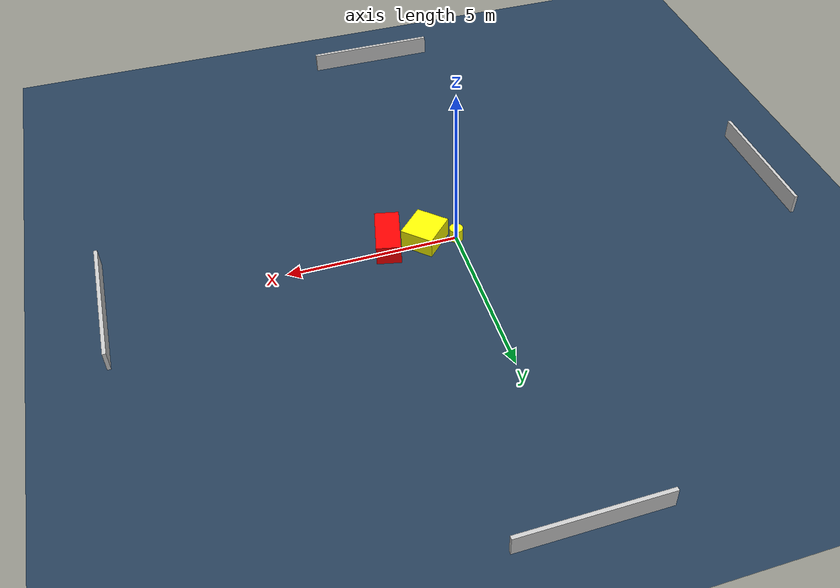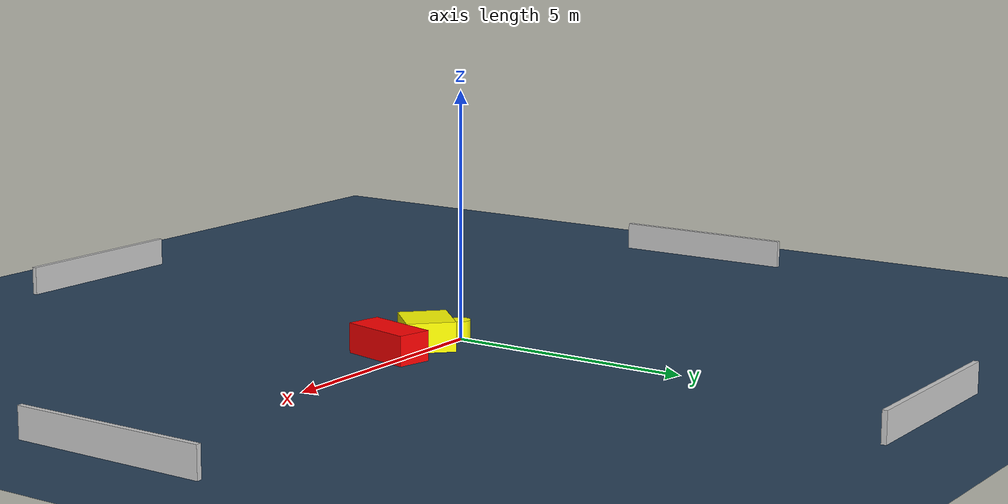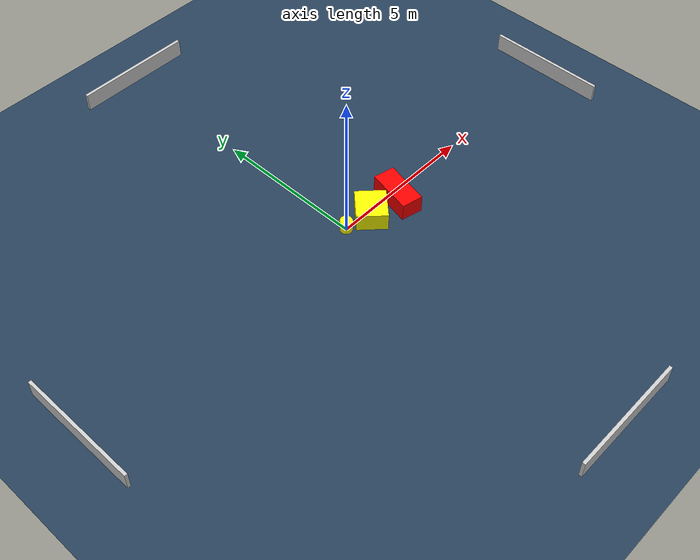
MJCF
<?xml version="1.0" ?>
<mujoco model="generated_environment">
  <option timestep="0.01" integrator="RK4" cone="elliptic"/>
  <default>
    <geom density="1"/>
  </default>
  <asset>
    <texture builtin="gradient" height="3072" name="skybox" rgb1="0.3 0.5 0.7" rgb2="0 0 0" type="skybox" width="512"/>
    <texture builtin="checker" height="300" name="groundplane" rgb1="0.2 0.3 0.4" rgb2="0.1 0.2 0.3" type="2d" width="300"/>
    <material name="groundplane" reflectance="0.2" texrepeat="5 5" texture="groundplane"/>
  </asset>
  <worldbody>
    <light dir="0 0 -1" directional="true" pos="0 0 1.5"/>
    <geom condim="3" friction="0.5 0.005 0.001" material="groundplane" name="floor" pos="0 0 0" size="0 0 0.05" type="plane"/>
    <body name="walls">
      <geom name="wall_1" condim="4" pos="-10.0 0.0 0.3" rgba="0.800000011920929 0.800000011920929 0.800000011920929 1.0" size="0.05 2.0 0.3" type="box"/>
      <geom name="wall_2" condim="4" pos="10.0 0.0 0.3" rgba="0.800000011920929 0.800000011920929 0.800000011920929 1.0" size="0.05 2.0 0.3" type="box"/>
      <geom name="wall_3" condim="4" pos="0.0 -10.0 0.3" rgba="0.800000011920929 0.800000011920929 0.800000011920929 1.0" size="2.0 0.05 0.3" type="box"/>
      <geom name="wall_4" condim="4" pos="0.0 10.0 0.3" rgba="0.800000011920929 0.800000011920929 0.800000011920929 1.0" size="2.0 0.05 0.3" type="box"/>
    </body>
    <body name="robot">
      <joint name="joint_x" type="slide" pos="0 0 0" axis="1 0 0"/>
      <joint name="joint_y" type="slide" pos="0 0 0" axis="0 1 0"/>
      <geom name="robot" type="cylinder" pos="0.0 0.0 0.2" size="0.2 0.2 0.0" mass="5.0" friction="1.0 0.005 0.0001" condim="4" rgba="1.0 1.0 0.0 1.0"/>
    </body>
    <body name="obstacle_1_movable">
      <geom name="obstacle_1_movable" condim="4" pos="0.8981798970162511 -0.1913143416311026 0.3" euler="0 0 316.24227995864766" friction="0.0 0.005 0.001" rgba="1.0 1.0 0.0 1.0" size="0.4935586385898459 0.5342438666022029 0.3" type="box" mass="0.1"/>
      <joint type="free"/>
    </body>
    <body name="obstacle_2_static">
      <geom name="obstacle_2_static" condim="4" pos="1.973134944309413 -0.31478619434112903 0.3" euler="0 0 347.4019554799177" friction="0.0 0.005 0.001" rgba="1.0 0.0 0.0 1.0" size="0.35687001723749684 0.7581575429324225 0.3" type="box"/>
    </body>
  </worldbody>
  <actuator>
    <motor name="actuator_x" joint="joint_x" gear="1" ctrlrange="-1 1"/>
    <motor name="actuator_y" joint="joint_y" gear="1" ctrlrange="-1 1"/>
  </actuator>
</mujoco>
